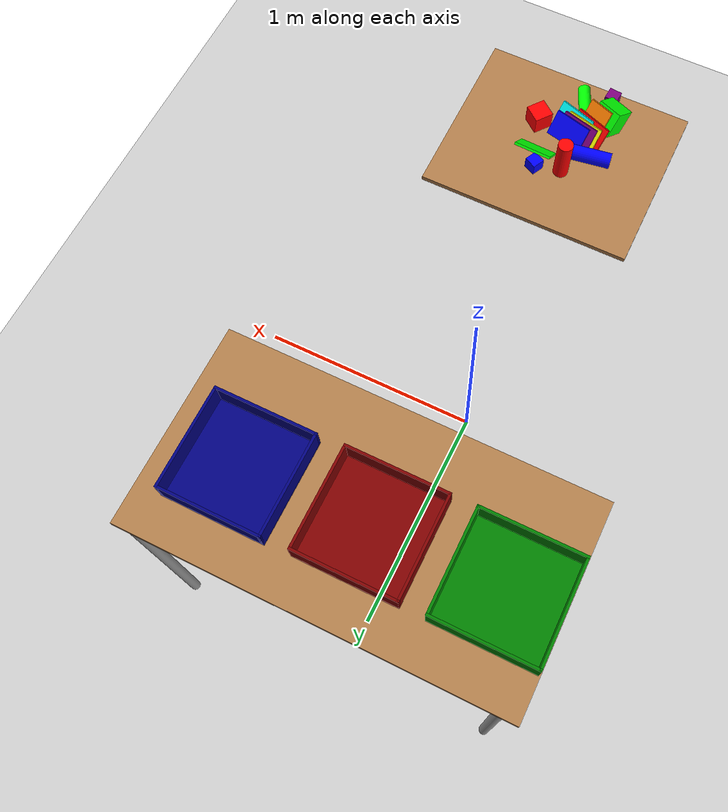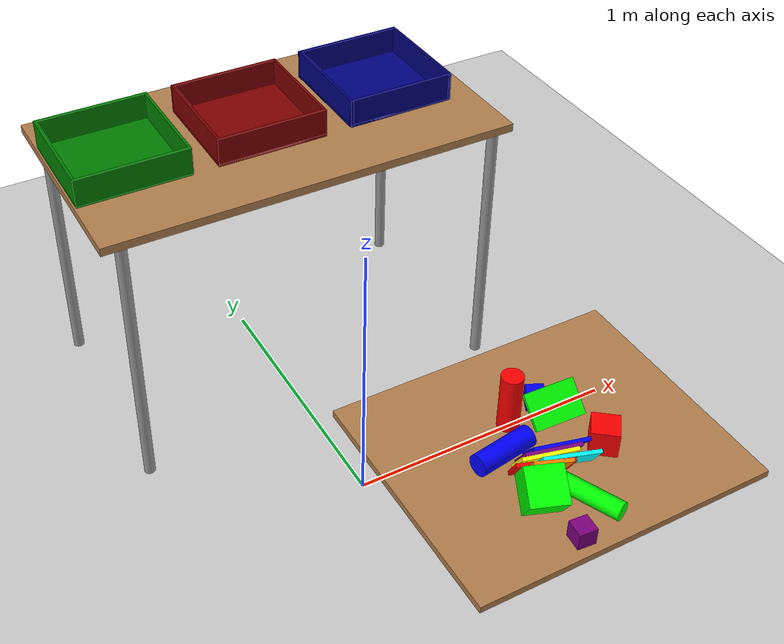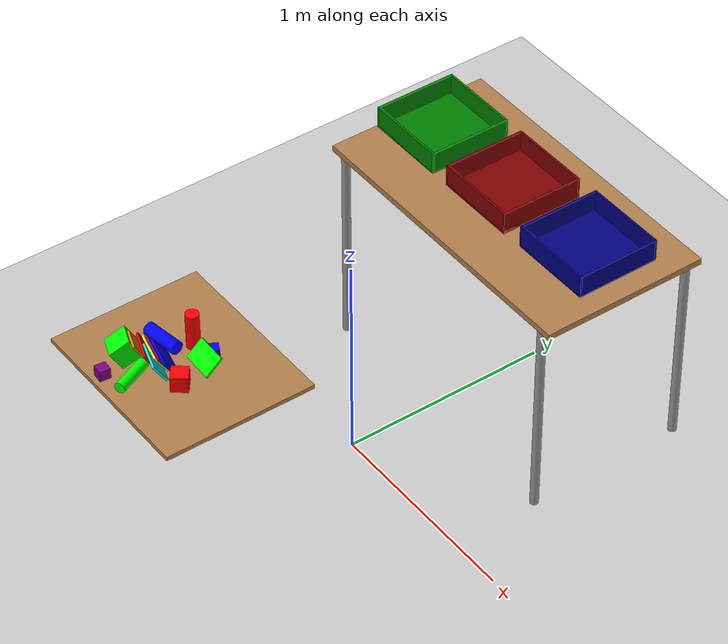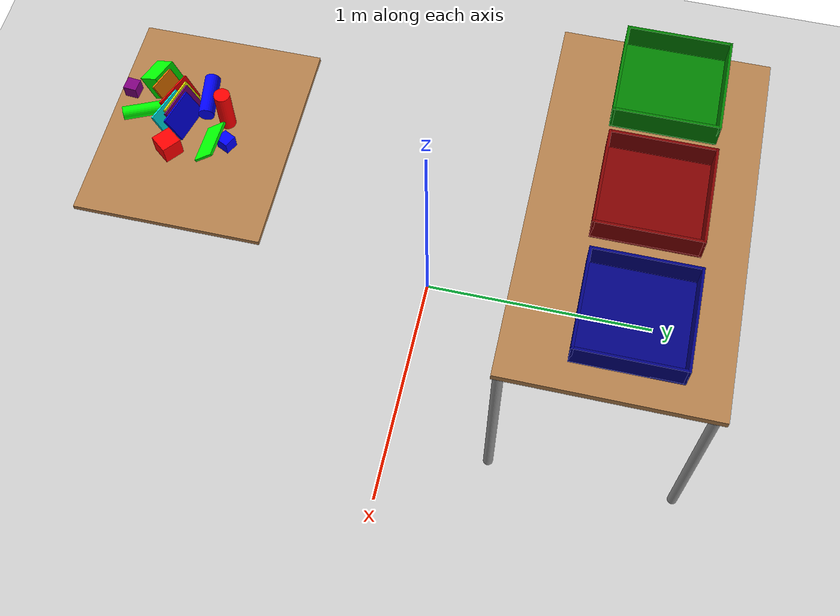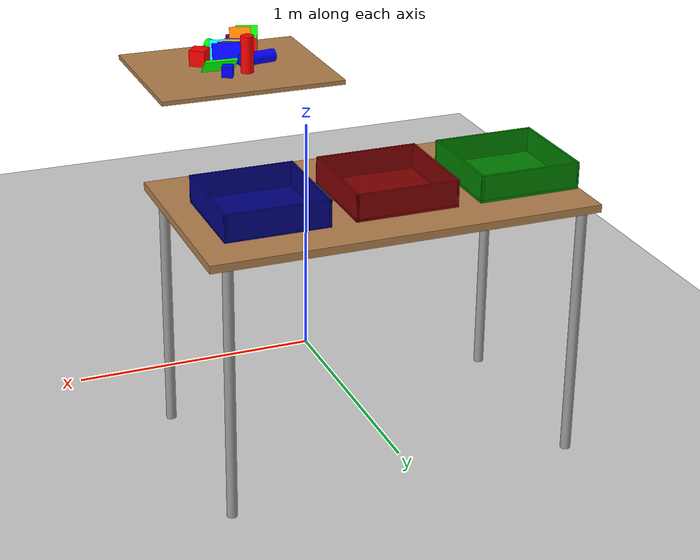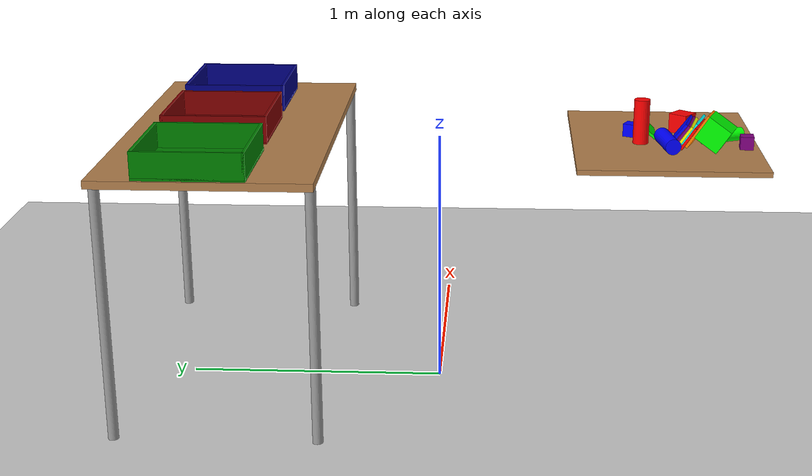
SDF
<sdf version="1.7">
 <world name="default">
  <light name="sun" type="directional">
   <pose>0 0 10 0 -0 0</pose>
   <diffuse>0.8 0.8 0.8 1</diffuse>
   <specular>0.2 0.2 0.2 1</specular>
   <attenuation>
    <range>1000</range>
    <constant>0.9</constant>
    <linear>0.01</linear>
    <quadratic>0.001</quadratic>
   </attenuation>
   <direction>-0.5 0.1 -0.9</direction>
   <spot><inner_angle>0</inner_angle><outer_angle>0</outer_angle><falloff>0</falloff></spot>
  </light>
  <model name="ground_plane">
   <static>1</static>
   <link name="link">
    <collision name="collision">
     <geometry><plane><normal>0 0 1</normal><size>100 100</size></plane></geometry>
     <surface><friction><ode><mu>100</mu><mu2>50</mu2></ode></friction></surface>
    </collision>
    <visual name="visual">
     <cast_shadows>0</cast_shadows>
     <geometry><plane><normal>0 0 1</normal><size>100 100</size></plane></geometry>
     <material>
      <script><uri>file://media/materials/scripts/gazebo.material</uri><name>Gazebo/Grey</name></script>
     </material>
    </visual>
   </link>
  </model>
  <gravity>0 0 -9.8</gravity>
  <magnetic_field>6e-06 2.3e-05 -4.2e-05</magnetic_field>
  <atmosphere type="adiabatic"/>
  <physics type="ode">
   <max_step_size>0.001</max_step_size>
   <real_time_factor>1</real_time_factor>
   <real_time_update_rate>1000</real_time_update_rate>
  </physics>
  <scene><ambient>0.4 0.4 0.4 1</ambient><background>0.7 0.7 0.7 1</background><shadows>1</shadows></scene>
  <audio><device>default</device></audio>
  <spherical_coordinates>
   <surface_model>EARTH_WGS84</surface_model>
   <latitude_deg>0</latitude_deg>
   <longitude_deg>0</longitude_deg>
   <elevation>0</elevation>
   <heading_deg>0</heading_deg>
  </spherical_coordinates>
  <model name="table">
   <static>1</static>
   <link name="link">
    <collision name="surface">
     <pose>0 0 1 0 -0 0</pose>
     <geometry><box><size>1.5 0.8 0.03</size></box></geometry>
     <surface>
      <friction><ode><mu>10</mu><mu2>5</mu2></ode></friction>
      <contact><ode><soft_cfm>0.0001</soft_cfm><soft_erp>0.4</soft_erp><kp>1e+06</kp><kd>10</kd></ode></contact>
     </surface>
    </collision>
    <visual name="visual1">
     <pose>0 0 1 0 -0 0</pose>
     <geometry><box><size>1.5 0.8 0.03</size></box></geometry>
     <material>
      <script><uri>file://media/materials/scripts/gazebo.material</uri><name>Gazebo/Wood</name></script>
     </material>
    </visual>
    <collision name="front_left_leg">
     <pose>0.68 0.38 0.5 0 -0 0</pose>
     <geometry><cylinder><radius>0.02</radius><length>1</length></cylinder></geometry>
    </collision>
    <visual name="front_left_leg">
     <pose>0.68 0.38 0.5 0 -0 0</pose>
     <geometry><cylinder><radius>0.02</radius><length>1</length></cylinder></geometry>
     <material>
      <script><uri>file://media/materials/scripts/gazebo.material</uri><name>Gazebo/Grey</name></script>
     </material>
    </visual>
    <collision name="front_right_leg">
     <pose>0.68 -0.38 0.5 0 -0 0</pose>
     <geometry><cylinder><radius>0.02</radius><length>1</length></cylinder></geometry>
    </collision>
    <visual name="front_right_leg">
     <pose>0.68 -0.38 0.5 0 -0 0</pose>
     <geometry><cylinder><radius>0.02</radius><length>1</length></cylinder></geometry>
     <material>
      <script><uri>file://media/materials/scripts/gazebo.material</uri><name>Gazebo/Grey</name></script>
     </material>
    </visual>
    <collision name="back_right_leg">
     <pose>-0.68 -0.38 0.5 0 -0 0</pose>
     <geometry><cylinder><radius>0.02</radius><length>1</length></cylinder></geometry>
    </collision>
    <visual name="back_right_leg">
     <pose>-0.68 -0.38 0.5 0 -0 0</pose>
     <geometry><cylinder><radius>0.02</radius><length>1</length></cylinder></geometry>
     <material>
      <script><uri>file://media/materials/scripts/gazebo.material</uri><name>Gazebo/Grey</name></script>
     </material>
    </visual>
    <collision name="back_left_leg">
     <pose>-0.68 0.38 0.5 0 -0 0</pose>
     <geometry><cylinder><radius>0.02</radius><length>1</length></cylinder></geometry>
    </collision>
    <visual name="back_left_leg">
     <pose>-0.68 0.38 0.5 0 -0 0</pose>
     <geometry><cylinder><radius>0.02</radius><length>1</length></cylinder></geometry>
     <material>
      <script><uri>file://media/materials/scripts/gazebo.material</uri><name>Gazebo/Grey</name></script>
     </material>
    </visual>
    <inertial>
     <inertia><ixx>1</ixx><ixy>0</ixy><ixz>0</ixz><iyy>1</iyy><iyz>0</iyz><izz>1</izz></inertia>
     <mass>50</mass>
    </inertial>
   </link>
   <pose>0.056083 0.801191 -1.2e-05 0 -0 2.5e-05</pose>
  </model>
  <plugin name="gazebo_link_attacher" filename="libgazebo_link_attacher.so"/>
  <plugin name="gazebo_ros_state" filename="libgazebo_ros_state.so">
   <namespace>/gazebo</namespace>
   <update_rate>100</update_rate>
  </plugin>
  <model name="cube_b">
   <link name="link_2">
    <inertial>
     <mass>2</mass>
     <inertia>
      <ixx>0.00083333</ixx>
      <ixy>0</ixy>
      <ixz>0</ixz>
      <iyy>0.00083333</iyy>
      <iyz>0</iyz>
      <izz>0.00083333</izz>
     </inertia>
    </inertial>
    <visual name="visual">
     <geometry><box><size>0.05 0.05 0.05</size></box></geometry>
     <material>
      <lighting>1</lighting>
      <script><uri>file://media/materials/scripts/gazebo.material</uri><name>Gazebo/Grey</name></script>
      <ambient>0 0 1 1</ambient>
      <diffuse>0 0 1 1</diffuse>
      <specular>0 0 0 1</specular>
      <emissive>0 0 0 1</emissive>
      <shader type="vertex"><normal_map>__default__</normal_map></shader>
     </material>
    </visual>
    <collision name="collision">
     <geometry><box><size>0.05 0.05 0.05</size></box></geometry>
     <surface>
      <friction>
       <ode><mu>0.8</mu><mu2>0.8</mu2><fdir1>0 0 0</fdir1><slip1>0</slip1><slip2>0</slip2></ode>
       <torsional>
        <coefficient>1</coefficient>
        <patch_radius>0</patch_radius>
        <surface_radius>0</surface_radius>
        <use_patch_radius>1</use_patch_radius>
        <ode><slip>0</slip></ode>
       </torsional>
      </friction>
      <bounce><restitution_coefficient>0</restitution_coefficient><threshold>1e+06</threshold></bounce>
      <contact>
       <collide_without_contact>0</collide_without_contact>
       <collide_without_contact_bitmask>1</collide_without_contact_bitmask>
       <collide_bitmask>1</collide_bitmask>
       <ode>
        <soft_cfm>0.0001</soft_cfm>
        <soft_erp>0.4</soft_erp>
        <kp>1e+06</kp>
        <kd>10</kd>
        <max_vel>0.01</max_vel>
        <min_depth>0</min_depth>
       </ode>
      </contact>
     </surface>
    </collision>
   </link>
   <static>0</static>
   <allow_auto_disable>0</allow_auto_disable>
   <pose>0.09124 -0.740627 1.01108 1.568 0.003218 2.68376</pose>
  </model>
  <model name="cube_g">
   <link name="link_2">
    <inertial>
     <mass>2</mass>
     <inertia>
      <ixx>0.00333333</ixx>
      <iyy>0.00333333</iyy>
      <izz>0.00333333</izz>
      <ixy>0</ixy>
      <ixz>0</ixz>
      <iyz>0</iyz>
     </inertia>
    </inertial>
    <visual name="visual">
     <geometry><box><size>0.1 0.1 0.1</size></box></geometry>
     <material>
      <lighting>1</lighting>
      <script><uri>file://media/materials/scripts/gazebo.material</uri><name>Gazebo/Grey</name></script>
      <ambient>0 1 0 1</ambient>
      <diffuse>0 1 0 1</diffuse>
      <specular>0 0 0 1</specular>
      <emissive>0 0 0 1</emissive>
      <shader type="vertex"><normal_map>__default__</normal_map></shader>
     </material>
    </visual>
    <collision name="collision">
     <geometry><box><size>0.1 0.1 0.1</size></box></geometry>
     <surface>
      <friction>
       <ode><mu>0.8</mu><mu2>0.8</mu2><fdir1>0 0 0</fdir1><slip1>0</slip1><slip2>0</slip2></ode>
       <torsional>
        <coefficient>1</coefficient>
        <patch_radius>0</patch_radius>
        <surface_radius>0</surface_radius>
        <use_patch_radius>1</use_patch_radius>
        <ode><slip>0</slip></ode>
       </torsional>
      </friction>
      <bounce><restitution_coefficient>0</restitution_coefficient><threshold>1e+06</threshold></bounce>
      <contact>
       <collide_without_contact>0</collide_without_contact>
       <collide_without_contact_bitmask>1</collide_without_contact_bitmask>
       <collide_bitmask>1</collide_bitmask>
       <ode>
        <soft_cfm>0.0001</soft_cfm>
        <soft_erp>0.4</soft_erp>
        <kp>1e+06</kp>
        <kd>10</kd>
        <max_vel>0.01</max_vel>
        <min_depth>0</min_depth>
       </ode>
      </contact>
     </surface>
    </collision>
   </link>
   <static>0</static>
   <allow_auto_disable>0</allow_auto_disable>
   <pose>-0.101167 -1.03914 1.05384 -2.13524 0.003444 2.78482</pose>
  </model>
  <model name="cube_r">
   <link name="link_2">
    <inertial>
     <mass>2</mass>
     <inertia>
      <ixx>0.001875</ixx>
      <ixy>0</ixy>
      <ixz>0</ixz>
      <iyy>0.001875</iyy>
      <iyz>0</iyz>
      <izz>0.001875</izz>
     </inertia>
    </inertial>
    <visual name="visual">
     <geometry><box><size>0.075 0.075 0.075</size></box></geometry>
     <material>
      <lighting>1</lighting>
      <script><uri>file://media/materials/scripts/gazebo.material</uri><name>Gazebo/Grey</name></script>
      <ambient>1 0 0 1</ambient>
      <diffuse>1 0 0 1</diffuse>
      <specular>0 0 0 1</specular>
      <emissive>0 0 0 1</emissive>
      <shader type="vertex"><normal_map>__default__</normal_map></shader>
     </material>
    </visual>
    <collision name="collision">
     <geometry><box><size>0.075 0.075 0.075</size></box></geometry>
     <surface>
      <friction>
       <ode><mu>0.8</mu><mu2>0.8</mu2><fdir1>0 0 0</fdir1><slip1>0</slip1><slip2>0</slip2></ode>
       <torsional>
        <coefficient>1</coefficient>
        <patch_radius>0</patch_radius>
        <surface_radius>0</surface_radius>
        <use_patch_radius>1</use_patch_radius>
        <ode><slip>0</slip></ode>
       </torsional>
      </friction>
      <bounce><restitution_coefficient>0</restitution_coefficient><threshold>1e+06</threshold></bounce>
      <contact>
       <collide_without_contact>0</collide_without_contact>
       <collide_without_contact_bitmask>1</collide_without_contact_bitmask>
       <collide_bitmask>1</collide_bitmask>
       <ode>
        <soft_cfm>0.0001</soft_cfm>
        <soft_erp>0.4</soft_erp>
        <kp>1e+06</kp>
        <kd>10</kd>
        <max_vel>0.01</max_vel>
        <min_depth>0</min_depth>
       </ode>
      </contact>
     </surface>
    </collision>
   </link>
   <static>0</static>
   <allow_auto_disable>0</allow_auto_disable>
   <pose>0.158899 -0.943794 1.02363 1.56823 -0.003454 0.903916</pose>
  </model>
  <model name="cylinder_r">
   <link name="link_0">
    <inertial>
     <mass>0.2</mass>
     <inertia>
      <ixx>0.0005267</ixx>
      <ixy>0</ixy>
      <ixz>0</ixz>
      <iyy>0.0005267</iyy>
      <iyz>0</iyz>
      <izz>9e-05</izz>
     </inertia>
    </inertial>
    <visual name="visual">
     <geometry><cylinder><radius>0.03</radius><length>0.17</length></cylinder></geometry>
     <material>
      <lighting>1</lighting>
      <script><uri>file://media/materials/scripts/gazebo.material</uri><name>Gazebo/Grey</name></script>
      <ambient>1 0 0 1</ambient>
      <diffuse>1 0 0 1</diffuse>
      <specular>0 0 0 1</specular>
      <emissive>0 0 0 1</emissive>
      <shader type="vertex"><normal_map>__default__</normal_map></shader>
     </material>
    </visual>
    <collision name="collision">
     <geometry><cylinder><radius>0.03</radius><length>0.17</length></cylinder></geometry>
     <surface>
      <friction>
       <ode><mu>0.5</mu><mu2>0.5</mu2><fdir1>0 0 0</fdir1><slip1>0</slip1><slip2>0</slip2></ode>
       <torsional>
        <coefficient>1</coefficient>
        <patch_radius>0</patch_radius>
        <surface_radius>0</surface_radius>
        <use_patch_radius>1</use_patch_radius>
        <ode><slip>0</slip></ode>
       </torsional>
      </friction>
      <bounce><restitution_coefficient>0</restitution_coefficient><threshold>1e+06</threshold></bounce>
      <contact>
       <collide_without_contact>0</collide_without_contact>
       <collide_without_contact_bitmask>1</collide_without_contact_bitmask>
       <collide_bitmask>1</collide_bitmask>
       <ode>
        <soft_cfm>0.0001</soft_cfm>
        <soft_erp>0.4</soft_erp>
        <kp>1e+06</kp>
        <kd>10</kd>
        <max_vel>0.01</max_vel>
        <min_depth>0</min_depth>
       </ode>
      </contact>
     </surface>
    </collision>
   </link>
   <static>0</static>
   <allow_auto_disable>0</allow_auto_disable>
   <pose>-0.010885 -0.768509 1.07063 0.004242 0.000747 -1.48052</pose>
  </model>
  <model name="cylinder_b">
   <link name="link_0">
    <inertial>
     <mass>0.2</mass>
     <inertia>
      <ixx>0.0005267</ixx>
      <ixy>0</ixy>
      <ixz>0</ixz>
      <iyy>0.0005267</iyy>
      <iyz>0</iyz>
      <izz>9e-05</izz>
     </inertia>
    </inertial>
    <visual name="visual">
     <geometry><cylinder><radius>0.03</radius><length>0.17</length></cylinder></geometry>
     <material>
      <lighting>1</lighting>
      <ambient>0 0 1 1</ambient>
      <diffuse>0 0 1 1</diffuse>
      <specular>0.1 0.1 0.1 1</specular>
      <emissive>0 0 0 1</emissive>
      <shader type="vertex"><normal_map>__default__</normal_map></shader>
     </material>
    </visual>
    <collision name="collision">
     <geometry><cylinder><radius>0.03</radius><length>0.17</length></cylinder></geometry>
     <surface>
      <friction>
       <ode><mu>0.4</mu><mu2>0.4</mu2><fdir1>0 0 0</fdir1><slip1>0</slip1><slip2>0</slip2></ode>
       <torsional>
        <coefficient>1</coefficient>
        <patch_radius>0</patch_radius>
        <surface_radius>0</surface_radius>
        <use_patch_radius>1</use_patch_radius>
        <ode><slip>0</slip></ode>
       </torsional>
      </friction>
      <bounce><restitution_coefficient>0</restitution_coefficient><threshold>1e+06</threshold></bounce>
      <contact>
       <collide_without_contact>0</collide_without_contact>
       <collide_without_contact_bitmask>1</collide_without_contact_bitmask>
       <collide_bitmask>1</collide_bitmask>
       <ode>
        <soft_cfm>0.0001</soft_cfm>
        <soft_erp>0.4</soft_erp>
        <kp>1e+06</kp>
        <kd>10</kd>
        <max_vel>0.01</max_vel>
        <min_depth>0</min_depth>
       </ode>
      </contact>
     </surface>
    </collision>
   </link>
   <static>0</static>
   <allow_auto_disable>0</allow_auto_disable>
   <pose>-0.090319 -0.862035 1.0152 1.61925 1.48233 -1.36748</pose>
  </model>
  <model name="cylinder_g">
   <link name="link_0">
    <inertial>
     <mass>0.2</mass>
     <inertia>
      <ixx>0.0005129</ixx>
      <ixy>0</ixy>
      <ixz>0</ixz>
      <iyy>0.0005129</iyy>
      <iyz>0</iyz>
      <izz>6.25e-05</izz>
     </inertia>
    </inertial>
    <visual name="visual">
     <geometry><cylinder><radius>0.025</radius><length>0.17</length></cylinder></geometry>
     <material>
      <lighting>1</lighting>
      <ambient>0 1 0 1</ambient>
      <diffuse>0 1 0 1</diffuse>
      <specular>0.1 0.1 0.1 1</specular>
      <emissive>0 0 0 1</emissive>
      <shader type="vertex"><normal_map>__default__</normal_map></shader>
     </material>
    </visual>
    <collision name="collision">
     <geometry><cylinder><radius>0.025</radius><length>0.17</length></cylinder></geometry>
     <surface>
      <friction>
       <ode><mu>0.5</mu><mu2>0.5</mu2><fdir1>0 0 0</fdir1><slip1>0</slip1><slip2>0</slip2></ode>
       <torsional>
        <coefficient>1</coefficient>
        <patch_radius>0</patch_radius>
        <surface_radius>0</surface_radius>
        <use_patch_radius>1</use_patch_radius>
        <ode><slip>0</slip></ode>
       </torsional>
      </friction>
      <bounce><restitution_coefficient>0</restitution_coefficient><threshold>1e+06</threshold></bounce>
      <contact>
       <collide_without_contact>0</collide_without_contact>
       <collide_without_contact_bitmask>1</collide_without_contact_bitmask>
       <collide_bitmask>1</collide_bitmask>
       <ode>
        <soft_cfm>0.0001</soft_cfm>
        <soft_erp>0.4</soft_erp>
        <kp>1e+06</kp>
        <kd>10</kd>
        <max_vel>0.01</max_vel>
        <min_depth>0</min_depth>
       </ode>
      </contact>
     </surface>
    </collision>
   </link>
   <static>0</static>
   <allow_auto_disable>0</allow_auto_disable>
   <pose>0.015624 -1.07985 1.01039 1.57011 -0.084995 0.422995</pose>
  </model>
  <model name="cuboid_r">
   <link name="link">
    <inertial>
     <mass>2</mass>
     <inertia>
      <ixx>0.001683</ixx>
      <iyy>0.003767</iyy>
      <izz>0.005417</izz>
      <ixy>0</ixy>
      <ixz>0</ixz>
      <iyz>0</iyz>
     </inertia>
    </inertial>
    <visual name="visual">
     <geometry><box><size>0.15 0.1 0.01</size></box></geometry>
     <material><ambient>1 0 0 1</ambient><diffuse>1 0 0 1</diffuse><specular>0.1 0.1 0.1 1</specular></material>
    </visual>
    <collision name="collision">
     <geometry><box><size>0.15 0.1 0.01</size></box></geometry>
     <surface>
      <friction>
       <ode><mu>0.6</mu><mu2>0.6</mu2><fdir1>0 0 0</fdir1><slip1>0</slip1><slip2>0</slip2></ode>
       <torsional>
        <coefficient>1</coefficient>
        <patch_radius>0</patch_radius>
        <surface_radius>0</surface_radius>
        <use_patch_radius>1</use_patch_radius>
        <ode><slip>0</slip></ode>
       </torsional>
      </friction>
      <bounce><restitution_coefficient>0</restitution_coefficient><threshold>1e+06</threshold></bounce>
      <contact>
       <collide_without_contact>0</collide_without_contact>
       <collide_without_contact_bitmask>1</collide_without_contact_bitmask>
       <collide_bitmask>1</collide_bitmask>
       <ode>
        <soft_cfm>0.0001</soft_cfm>
        <soft_erp>0.4</soft_erp>
        <kp>1e+06</kp>
        <kd>10</kd>
        <max_vel>0.01</max_vel>
        <min_depth>0</min_depth>
       </ode>
      </contact>
     </surface>
    </collision>
   </link>
   <static>0</static>
   <allow_auto_disable>0</allow_auto_disable>
   <pose>-0.045407 -0.962043 1.03024 2.13523 -0.003448 -0.356707</pose>
  </model>
  <model name="cuboid_g">
   <link name="link">
    <inertial>
     <mass>2</mass>
     <inertia>
      <ixx>0.001683</ixx>
      <iyy>0.003767</iyy>
      <izz>0.005417</izz>
      <ixy>0</ixy>
      <ixz>0</ixz>
      <iyz>0</iyz>
     </inertia>
    </inertial>
    <visual name="visual">
     <geometry><box><size>0.15 0.1 0.01</size></box></geometry>
     <material><ambient>0 1 0 1</ambient><diffuse>0 1 0 1</diffuse><specular>0.1 0.1 0.1 1</specular></material>
    </visual>
    <collision name="collision">
     <geometry><box><size>0.15 0.1 0.01</size></box></geometry>
     <surface>
      <friction>
       <ode><mu>0.6</mu><mu2>0.6</mu2><fdir1>0 0 0</fdir1><slip1>0</slip1><slip2>0</slip2></ode>
       <torsional>
        <coefficient>1</coefficient>
        <patch_radius>0</patch_radius>
        <surface_radius>0</surface_radius>
        <use_patch_radius>1</use_patch_radius>
        <ode><slip>0</slip></ode>
       </torsional>
      </friction>
      <bounce><restitution_coefficient>0</restitution_coefficient><threshold>1e+06</threshold></bounce>
      <contact>
       <collide_without_contact>0</collide_without_contact>
       <collide_without_contact_bitmask>1</collide_without_contact_bitmask>
       <collide_bitmask>1</collide_bitmask>
       <ode>
        <soft_cfm>0.0001</soft_cfm>
        <soft_erp>0.4</soft_erp>
        <kp>1e+06</kp>
        <kd>10</kd>
        <max_vel>0.01</max_vel>
        <min_depth>0</min_depth>
       </ode>
      </contact>
     </surface>
    </collision>
   </link>
   <static>0</static>
   <allow_auto_disable>0</allow_auto_disable>
   <pose>0.111852 -0.795549 1.02355 -2.39905 -0.004095 -0.037801</pose>
  </model>
  <model name="cuboid_b">
   <link name="link">
    <inertial>
     <mass>2</mass>
     <inertia>
      <ixx>0.001683</ixx>
      <iyy>0.003767</iyy>
      <izz>0.005417</izz>
      <ixy>0</ixy>
      <ixz>0</ixz>
      <iyz>0</iyz>
     </inertia>
    </inertial>
    <visual name="visual">
     <geometry><box><size>0.15 0.1 0.01</size></box></geometry>
     <material><ambient>0 0 1 1</ambient><diffuse>0 0 1 1</diffuse><specular>0.1 0.1 0.1 1</specular></material>
    </visual>
    <collision name="collision">
     <geometry><box><size>0.15 0.1 0.01</size></box></geometry>
     <surface>
      <friction>
       <ode><mu>0.6</mu><mu2>0.6</mu2><fdir1>0 0 0</fdir1><slip1>0</slip1><slip2>0</slip2></ode>
       <torsional>
        <coefficient>1</coefficient>
        <patch_radius>0</patch_radius>
        <surface_radius>0</surface_radius>
        <use_patch_radius>1</use_patch_radius>
        <ode><slip>0</slip></ode>
       </torsional>
      </friction>
      <bounce><restitution_coefficient>0</restitution_coefficient><threshold>1e+06</threshold></bounce>
      <contact>
       <collide_without_contact>0</collide_without_contact>
       <collide_without_contact_bitmask>1</collide_without_contact_bitmask>
       <collide_bitmask>1</collide_bitmask>
       <ode>
        <soft_cfm>0.0001</soft_cfm>
        <soft_erp>0.4</soft_erp>
        <kp>1e+06</kp>
        <kd>10</kd>
        <max_vel>0.01</max_vel>
        <min_depth>0</min_depth>
       </ode>
      </contact>
     </surface>
    </collision>
   </link>
   <static>0</static>
   <allow_auto_disable>0</allow_auto_disable>
   <pose>0.025391 -0.924802 1.02891 -2.20421 0.003793 2.89939</pose>
  </model>
  <model name="cuboid_purple">
   <link name="link">
    <inertial>
     <mass>2</mass>
     <inertia>
      <ixx>0.001683</ixx>
      <iyy>0.003767</iyy>
      <izz>0.005417</izz>
      <ixy>0</ixy>
      <ixz>0</ixz>
      <iyz>0</iyz>
     </inertia>
    </inertial>
    <visual name="visual">
     <geometry><box><size>0.15 0.1 0.01</size></box></geometry>
     <material>
      <ambient>0.5 0 0.5 1</ambient>
      <diffuse>0.5 0 0.5 1</diffuse>
      <specular>0.1 0.1 0.1 1</specular>
     </material>
    </visual>
    <collision name="collision">
     <geometry><box><size>0.15 0.1 0.01</size></box></geometry>
     <surface>
      <friction>
       <ode><mu>0.6</mu><mu2>0.6</mu2><fdir1>0 0 0</fdir1><slip1>0</slip1><slip2>0</slip2></ode>
       <torsional>
        <coefficient>1</coefficient>
        <patch_radius>0</patch_radius>
        <surface_radius>0</surface_radius>
        <use_patch_radius>1</use_patch_radius>
        <ode><slip>0</slip></ode>
       </torsional>
      </friction>
      <bounce><restitution_coefficient>0</restitution_coefficient><threshold>1e+06</threshold></bounce>
      <contact>
       <collide_without_contact>0</collide_without_contact>
       <collide_without_contact_bitmask>1</collide_without_contact_bitmask>
       <collide_bitmask>1</collide_bitmask>
       <ode>
        <soft_cfm>0.0001</soft_cfm>
        <soft_erp>0.4</soft_erp>
        <kp>1e+06</kp>
        <kd>10</kd>
        <max_vel>0.01</max_vel>
        <min_depth>0</min_depth>
       </ode>
      </contact>
     </surface>
    </collision>
   </link>
   <static>0</static>
   <allow_auto_disable>0</allow_auto_disable>
   <pose>-0.004146 -0.933331 1.03002 -2.16208 0.006642 2.89751</pose>
  </model>
  <model name="cuboid_orange">
   <link name="link">
    <inertial>
     <mass>2</mass>
     <inertia>
      <ixx>0.001683</ixx>
      <iyy>0.003767</iyy>
      <izz>0.005417</izz>
      <ixy>0</ixy>
      <ixz>0</ixz>
      <iyz>0</iyz>
     </inertia>
    </inertial>
    <visual name="visual">
     <geometry><box><size>0.15 0.1 0.01</size></box></geometry>
     <material>
      <ambient>1 0.5 0 1</ambient>
      <diffuse>1 0.5 0 1</diffuse>
      <specular>0.1 0.1 0.1 1</specular>
     </material>
    </visual>
    <collision name="collision">
     <geometry><box><size>0.15 0.1 0.01</size></box></geometry>
     <surface>
      <friction>
       <ode><mu>0.6</mu><mu2>0.6</mu2><fdir1>0 0 0</fdir1><slip1>0</slip1><slip2>0</slip2></ode>
       <torsional>
        <coefficient>1</coefficient>
        <patch_radius>0</patch_radius>
        <surface_radius>0</surface_radius>
        <use_patch_radius>1</use_patch_radius>
        <ode><slip>0</slip></ode>
       </torsional>
      </friction>
      <bounce><restitution_coefficient>0</restitution_coefficient><threshold>1e+06</threshold></bounce>
      <contact>
       <collide_without_contact>0</collide_without_contact>
       <collide_without_contact_bitmask>1</collide_without_contact_bitmask>
       <collide_bitmask>1</collide_bitmask>
       <ode>
        <soft_cfm>0.0001</soft_cfm>
        <soft_erp>0.4</soft_erp>
        <kp>1e+06</kp>
        <kd>10</kd>
        <max_vel>0.01</max_vel>
        <min_depth>0</min_depth>
       </ode>
      </contact>
     </surface>
    </collision>
   </link>
   <static>0</static>
   <allow_auto_disable>0</allow_auto_disable>
   <pose>-0.051838 -0.987144 1.05241 3.10879 -1.00691 -1.88675</pose>
  </model>
  <model name="cuboid_yellow">
   <link name="link">
    <inertial>
     <mass>2</mass>
     <inertia>
      <ixx>0.001683</ixx>
      <iyy>0.003767</iyy>
      <izz>0.005417</izz>
      <ixy>0</ixy>
      <ixz>0</ixz>
      <iyz>0</iyz>
     </inertia>
    </inertial>
    <visual name="visual">
     <geometry><box><size>0.15 0.1 0.01</size></box></geometry>
     <material><ambient>1 1 0 1</ambient><diffuse>1 1 0 1</diffuse><specular>0.1 0.1 0.1 1</specular></material>
    </visual>
    <collision name="collision">
     <geometry><box><size>0.15 0.1 0.01</size></box></geometry>
     <surface>
      <friction>
       <ode><mu>0.6</mu><mu2>0.6</mu2><fdir1>0 0 0</fdir1><slip1>0</slip1><slip2>0</slip2></ode>
       <torsional>
        <coefficient>1</coefficient>
        <patch_radius>0</patch_radius>
        <surface_radius>0</surface_radius>
        <use_patch_radius>1</use_patch_radius>
        <ode><slip>0</slip></ode>
       </torsional>
      </friction>
      <bounce><restitution_coefficient>0</restitution_coefficient><threshold>1e+06</threshold></bounce>
      <contact>
       <collide_without_contact>0</collide_without_contact>
       <collide_without_contact_bitmask>1</collide_without_contact_bitmask>
       <collide_bitmask>1</collide_bitmask>
       <ode>
        <soft_cfm>0.0001</soft_cfm>
        <soft_erp>0.4</soft_erp>
        <kp>1e+06</kp>
        <kd>10</kd>
        <max_vel>0.01</max_vel>
        <min_depth>0</min_depth>
       </ode>
      </contact>
     </surface>
    </collision>
   </link>
   <static>0</static>
   <allow_auto_disable>0</allow_auto_disable>
   <pose>-0.020328 -0.941553 1.02976 -2.16174 0.003017 2.90009</pose>
  </model>
  <model name="cuboid_cyan">
   <link name="link">
    <inertial>
     <mass>2</mass>
     <inertia>
      <ixx>0.001683</ixx>
      <iyy>0.003767</iyy>
      <izz>0.005417</izz>
      <ixy>0</ixy>
      <ixz>0</ixz>
      <iyz>0</iyz>
     </inertia>
    </inertial>
    <visual name="visual">
     <geometry><box><size>0.15 0.1 0.01</size></box></geometry>
     <material><ambient>0 1 1 1</ambient><diffuse>0 1 1 1</diffuse><specular>0.1 0.1 0.1 1</specular></material>
    </visual>
    <collision name="collision">
     <geometry><box><size>0.15 0.1 0.01</size></box></geometry>
     <surface>
      <friction>
       <ode><mu>0.6</mu><mu2>0.6</mu2><fdir1>0 0 0</fdir1><slip1>0</slip1><slip2>0</slip2></ode>
       <torsional>
        <coefficient>1</coefficient>
        <patch_radius>0</patch_radius>
        <surface_radius>0</surface_radius>
        <use_patch_radius>1</use_patch_radius>
        <ode><slip>0</slip></ode>
       </torsional>
      </friction>
      <bounce><restitution_coefficient>0</restitution_coefficient><threshold>1e+06</threshold></bounce>
      <contact>
       <collide_without_contact>0</collide_without_contact>
       <collide_without_contact_bitmask>1</collide_without_contact_bitmask>
       <collide_bitmask>1</collide_bitmask>
       <ode>
        <soft_cfm>0.0001</soft_cfm>
        <soft_erp>0.4</soft_erp>
        <kp>1e+06</kp>
        <kd>10</kd>
        <max_vel>0.01</max_vel>
        <min_depth>0</min_depth>
       </ode>
      </contact>
     </surface>
    </collision>
   </link>
   <static>0</static>
   <allow_auto_disable>0</allow_auto_disable>
   <pose>0.024664 -0.971621 1.03029 2.14468 -0.003574 -0.313745</pose>
  </model>
  <model name="workspace">
   <link name="link">
    <inertial>
     <mass>100</mass>
     <inertia><ixx>6.02417</ixx><ixy>0</ixy><ixz>0</ixz><iyy>4.08667</iyy><iyz>0</iyz><izz>10.1042</izz></inertia>
    </inertial>
    <visual name="visual">
     <geometry><box><size>0.7 0.85 0.02</size></box></geometry>
     <material>
      <script><name>Gazebo/Wood</name><uri>file://media/materials/scripts/gazebo.material</uri></script>
      <shader type="pixel"/>
     </material>
    </visual>
    <collision name="collision">
     <geometry><box><size>0.7 0.85 0.02</size></box></geometry>
     <surface>
      <friction>
       <ode><mu>100</mu><mu2>50</mu2><fdir1>0 0 0</fdir1><slip1>0</slip1><slip2>0</slip2></ode>
       <torsional>
        <coefficient>1</coefficient>
        <patch_radius>0</patch_radius>
        <surface_radius>0</surface_radius>
        <use_patch_radius>1</use_patch_radius>
        <ode><slip>0</slip></ode>
       </torsional>
      </friction>
      <bounce><restitution_coefficient>0</restitution_coefficient><threshold>1e+06</threshold></bounce>
      <contact>
       <collide_without_contact>0</collide_without_contact>
       <collide_without_contact_bitmask>1</collide_without_contact_bitmask>
       <collide_bitmask>1</collide_bitmask>
       <ode>
        <soft_cfm>0.0001</soft_cfm>
        <soft_erp>0.2</soft_erp>
        <kp>1e+13</kp>
        <kd>10</kd>
        <max_vel>0.01</max_vel>
        <min_depth>0</min_depth>
       </ode>
       <bullet>
        <split_impulse>1</split_impulse>
        <split_impulse_penetration_threshold>-0.01</split_impulse_penetration_threshold>
        <soft_cfm>0</soft_cfm>
        <soft_erp>0.2</soft_erp>
        <kp>1e+13</kp>
        <kd>1</kd>
       </bullet>
      </contact>
     </surface>
    </collision>
   </link>
   <static>1</static>
   <pose>0.0416 -0.859914 0.975746 -0.004154 -0.001127 1.57039</pose>
  </model>
  <model name="tray_red">
   <static>1</static>
   <link name="link">
    <collision name="base_collision">
     <pose>0 0 0.01 0 -0 0</pose>
     <geometry><box><size>0.4 0.4 0.01</size></box></geometry>
     <surface><contact><ode><mu>50</mu><mu2>50</mu2></ode></contact></surface>
    </collision>
    <visual name="base_visual">
     <pose>0 0 0.01 0 -0 0</pose>
     <geometry><box><size>0.4 0.4 0.01</size></box></geometry>
     <material>
      <ambient>1 0 0 1</ambient>
      <diffuse>0.5 0 0 1</diffuse>
      <specular>0 0 0 1</specular>
      <emissive>0 0 0 1</emissive>
      <shininess>100</shininess>
     </material>
    </visual>
    <collision name="front_collision">
     <pose>0 0.195 0.06 0 -0 0</pose>
     <geometry><box><size>0.4 0.01 0.1</size></box></geometry>
    </collision>
    <visual name="front_visual">
     <pose>0 0.195 0.06 0 -0 0</pose>
     <geometry><box><size>0.4 0.01 0.1</size></box></geometry>
     <material>
      <ambient>1 0 0 1</ambient>
      <diffuse>0.5 0 0 1</diffuse>
      <specular>0 0 0 1</specular>
      <emissive>0 0 0 1</emissive>
     </material>
    </visual>
    <collision name="back_collision">
     <pose>0 -0.195 0.06 0 -0 0</pose>
     <geometry><box><size>0.4 0.01 0.1</size></box></geometry>
    </collision>
    <visual name="back_visual">
     <pose>0 -0.195 0.06 0 -0 0</pose>
     <geometry><box><size>0.4 0.01 0.1</size></box></geometry>
     <material>
      <ambient>1 0 0 1</ambient>
      <diffuse>0.5 0 0 1</diffuse>
      <specular>0 0 0 1</specular>
      <emissive>0 0 0 1</emissive>
     </material>
    </visual>
    <collision name="left_collision">
     <pose>0.195 0 0.06 0 -0 0</pose>
     <geometry><box><size>0.01 0.4 0.1</size></box></geometry>
    </collision>
    <visual name="left_visual">
     <pose>0.195 0 0.06 0 -0 0</pose>
     <geometry><box><size>0.01 0.4 0.1</size></box></geometry>
     <material>
      <ambient>1 0 0 1</ambient>
      <diffuse>0.5 0 0 1</diffuse>
      <specular>0 0 0 1</specular>
      <emissive>0 0 0 1</emissive>
     </material>
    </visual>
    <collision name="right_collision">
     <pose>-0.195 0 0.06 0 -0 0</pose>
     <geometry><box><size>0.01 0.4 0.1</size></box></geometry>
    </collision>
    <visual name="right_visual">
     <pose>-0.195 0 0.06 0 -0 0</pose>
     <geometry><box><size>0.01 0.4 0.1</size></box></geometry>
     <material>
      <ambient>1 0 0 1</ambient>
      <diffuse>0.5 0 0 1</diffuse>
      <specular>0 0 0 1</specular>
      <emissive>0 0 0 1</emissive>
     </material>
    </visual>
    <inertial>
     <inertia><ixx>1</ixx><ixy>0</ixy><ixz>0</ixz><iyy>1</iyy><iyz>0</iyz><izz>1</izz></inertia>
     <mass>1</mass>
    </inertial>
   </link>
   <pose>0.003367 0.836815 1.00999 0 -0 0</pose>
  </model>
  <model name="tray_green">
   <static>1</static>
   <link name="link">
    <collision name="base_collision">
     <pose>0 0 0.01 0 -0 0</pose>
     <geometry><box><size>0.4 0.4 0.01</size></box></geometry>
     <surface><contact><ode><mu>50</mu><mu2>50</mu2></ode></contact></surface>
    </collision>
    <visual name="base_visual">
     <pose>0 0 0.01 0 -0 0</pose>
     <geometry><box><size>0.4 0.4 0.01</size></box></geometry>
     <material><ambient>0 1 0 1</ambient><diffuse>0 0.5 0 1</diffuse></material>
    </visual>
    <collision name="front_collision">
     <pose>0 0.195 0.06 0 -0 0</pose>
     <geometry><box><size>0.4 0.01 0.1</size></box></geometry>
    </collision>
    <visual name="front_visual">
     <pose>0 0.195 0.06 0 -0 0</pose>
     <geometry><box><size>0.4 0.01 0.1</size></box></geometry>
     <material><ambient>0 1 0 1</ambient><diffuse>0 0.5 0 1</diffuse></material>
    </visual>
    <collision name="back_collision">
     <pose>0 -0.195 0.06 0 -0 0</pose>
     <geometry><box><size>0.4 0.01 0.1</size></box></geometry>
    </collision>
    <visual name="back_visual">
     <pose>0 -0.195 0.06 0 -0 0</pose>
     <geometry><box><size>0.4 0.01 0.1</size></box></geometry>
     <material><ambient>0 1 0 1</ambient><diffuse>0 0.5 0 1</diffuse></material>
    </visual>
    <collision name="left_collision">
     <pose>0.195 0 0.06 0 -0 0</pose>
     <geometry><box><size>0.01 0.4 0.1</size></box></geometry>
    </collision>
    <visual name="left_visual">
     <pose>0.195 0 0.06 0 -0 0</pose>
     <geometry><box><size>0.01 0.4 0.1</size></box></geometry>
     <material><ambient>0 1 0 1</ambient><diffuse>0 0.5 0 1</diffuse></material>
    </visual>
    <collision name="right_collision">
     <pose>-0.195 0 0.06 0 -0 0</pose>
     <geometry><box><size>0.01 0.4 0.1</size></box></geometry>
    </collision>
    <visual name="right_visual">
     <pose>-0.195 0 0.06 0 -0 0</pose>
     <geometry><box><size>0.01 0.4 0.1</size></box></geometry>
     <material><ambient>0 1 0 1</ambient><diffuse>0 0.5 0 1</diffuse></material>
    </visual>
    <inertial>
     <inertia><ixx>1</ixx><ixy>0</ixy><ixz>0</ixz><iyy>1</iyy><iyz>0</iyz><izz>1</izz></inertia>
     <mass>1</mass>
    </inertial>
   </link>
   <pose>-0.487214 0.834657 1.00999 0 -0 0</pose>
  </model>
  <model name="tray_blue">
   <static>1</static>
   <link name="link">
    <collision name="base_collision">
     <pose>0 0 0.01 0 -0 0</pose>
     <geometry><box><size>0.4 0.4 0.01</size></box></geometry>
     <surface><contact><ode><mu>50</mu><mu2>50</mu2></ode></contact></surface>
    </collision>
    <visual name="base_visual">
     <pose>0 0 0.01 0 -0 0</pose>
     <geometry><box><size>0.4 0.4 0.01</size></box></geometry>
     <material><ambient>0 0 1 1</ambient><diffuse>0 0 0.5 1</diffuse></material>
    </visual>
    <collision name="front_collision">
     <pose>0 0.195 0.06 0 -0 0</pose>
     <geometry><box><size>0.4 0.01 0.1</size></box></geometry>
    </collision>
    <visual name="front_visual">
     <pose>0 0.195 0.06 0 -0 0</pose>
     <geometry><box><size>0.4 0.01 0.1</size></box></geometry>
     <material><ambient>0 0 1 1</ambient><diffuse>0 0 0.5 1</diffuse></material>
    </visual>
    <collision name="back_collision">
     <pose>0 -0.195 0.06 0 -0 0</pose>
     <geometry><box><size>0.4 0.01 0.1</size></box></geometry>
    </collision>
    <visual name="back_visual">
     <pose>0 -0.195 0.06 0 -0 0</pose>
     <geometry><box><size>0.4 0.01 0.1</size></box></geometry>
     <material><ambient>0 0 1 1</ambient><diffuse>0 0 0.5 1</diffuse></material>
    </visual>
    <collision name="left_collision">
     <pose>0.195 0 0.06 0 -0 0</pose>
     <geometry><box><size>0.01 0.4 0.1</size></box></geometry>
    </collision>
    <visual name="left_visual">
     <pose>0.195 0 0.06 0 -0 0</pose>
     <geometry><box><size>0.01 0.4 0.1</size></box></geometry>
     <material><ambient>0 0 1 1</ambient><diffuse>0 0 0.5 1</diffuse></material>
    </visual>
    <collision name="right_collision">
     <pose>-0.195 0 0.06 0 -0 0</pose>
     <geometry><box><size>0.01 0.4 0.1</size></box></geometry>
    </collision>
    <visual name="right_visual">
     <pose>-0.195 0 0.06 0 -0 0</pose>
     <geometry><box><size>0.01 0.4 0.1</size></box></geometry>
     <material><ambient>0 0 1 1</ambient><diffuse>0 0 0.5 1</diffuse></material>
    </visual>
    <inertial>
     <inertia><ixx>1</ixx><ixy>0</ixy><ixz>0</ixz><iyy>1</iyy><iyz>0</iyz><izz>1</izz></inertia>
     <mass>1</mass>
    </inertial>
   </link>
   <pose>0.500589 0.844197 1.00999 0 -0 0</pose>
  </model>
  <model name="cube_purple">
   <link name="link_2">
    <inertial>
     <mass>2</mass>
     <inertia>
      <ixx>0.00083333</ixx>
      <ixy>0</ixy>
      <ixz>0</ixz>
      <iyy>0.00083333</iyy>
      <iyz>0</iyz>
      <izz>0.00083333</izz>
     </inertia>
    </inertial>
    <visual name="visual">
     <geometry><box><size>0.05 0.05 0.05</size></box></geometry>
     <material>
      <lighting>1</lighting>
      <script><uri>file://media/materials/scripts/gazebo.material</uri><name>Gazebo/Grey</name></script>
      <ambient>0.5 0 0.5 1</ambient>
      <diffuse>0.5 0 0.5 1</diffuse>
      <specular>0.1 0.1 0.1 1</specular>
      <emissive>0 0 0 1</emissive>
      <shader type="vertex"><normal_map>__default__</normal_map></shader>
     </material>
    </visual>
    <collision name="collision">
     <geometry><box><size>0.05 0.05 0.05</size></box></geometry>
     <surface>
      <friction>
       <ode><mu>0.8</mu><mu2>0.8</mu2><fdir1>0 0 0</fdir1><slip1>0</slip1><slip2>0</slip2></ode>
       <torsional>
        <coefficient>1</coefficient>
        <patch_radius>0</patch_radius>
        <surface_radius>0</surface_radius>
        <use_patch_radius>1</use_patch_radius>
        <ode><slip>0</slip></ode>
       </torsional>
      </friction>
      <bounce><restitution_coefficient>0</restitution_coefficient><threshold>1e+06</threshold></bounce>
      <contact>
       <collide_without_contact>0</collide_without_contact>
       <collide_without_contact_bitmask>1</collide_without_contact_bitmask>
       <collide_bitmask>1</collide_bitmask>
       <ode>
        <soft_cfm>0.0001</soft_cfm>
        <soft_erp>0.4</soft_erp>
        <kp>1e+06</kp>
        <kd>10</kd>
        <max_vel>0.01</max_vel>
        <min_depth>0</min_depth>
       </ode>
      </contact>
     </surface>
    </collision>
   </link>
   <static>0</static>
   <allow_auto_disable>0</allow_auto_disable>
   <pose>-0.070646 -1.16097 1.00994 3.13755 -0.001474 1.48585</pose>
  </model>
 </world>
</sdf>
